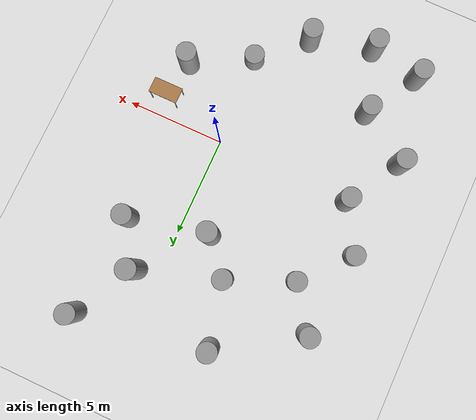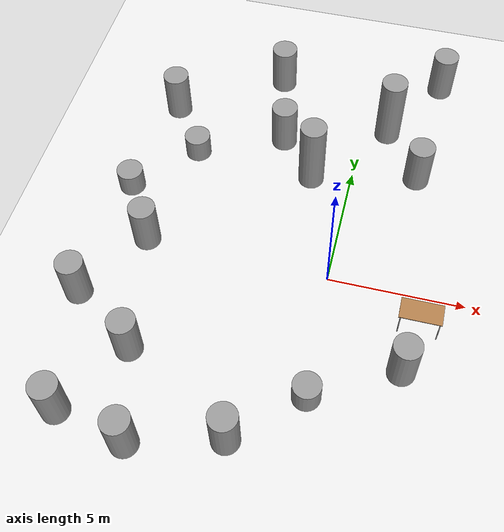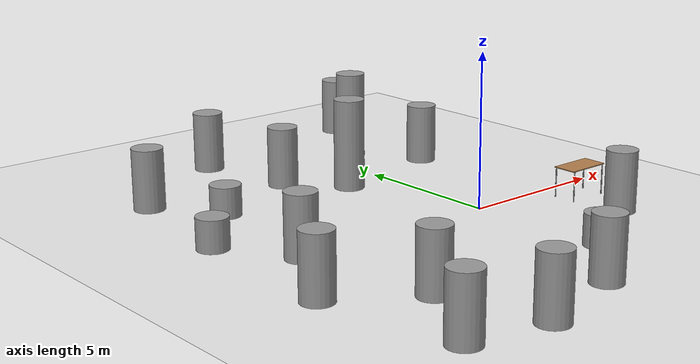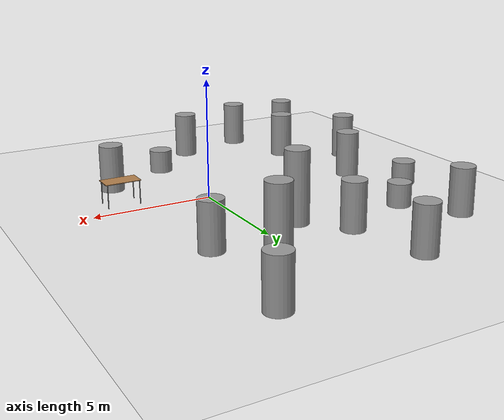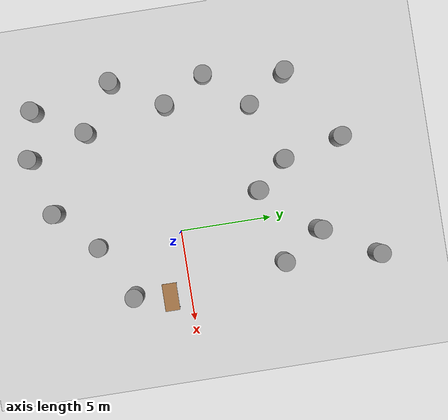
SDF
<sdf version="1.6">
 <world name="default">
  <model name="ground_plane">
   <static>1</static>
   <link name="link">
    <collision name="collision">
     <geometry><plane><normal>0 0 1</normal><size>100 100</size></plane></geometry>
     <surface><friction><ode><mu>100</mu><mu2>50</mu2></ode></friction></surface>
    </collision>
    <visual name="visual">
     <geometry><plane><normal>0 0 1</normal><size>100 100</size></plane></geometry>
     <material>
      <script><uri>file://media/materials/scripts/gazebo.material</uri><name>Gazebo/White</name></script>
     </material>
    </visual>
   </link>
  </model>
  <model name="unit_cylinder_5_clone_4">
   <link name="link">
    <inertial>
     <mass>1</mass>
     <inertia><ixx>0.145833</ixx><ixy>0</ixy><ixz>0</ixz><iyy>0.145833</iyy><iyz>0</iyz><izz>0.125</izz></inertia>
    </inertial>
    <visual name="visual">
     <geometry><cylinder><radius>0.5</radius><length>2</length></cylinder></geometry>
     <material>
      <script><name>Gazebo/Grey</name><uri>file://media/materials/scripts/gazebo.material</uri></script>
      <ambient>0.3 0.3 0.3 1</ambient>
      <diffuse>0.7 0.7 0.7 1</diffuse>
      <specular>0.01 0.01 0.01 1</specular>
      <emissive>0 0 0 1</emissive>
      <shader type="vertex"><normal_map>__default__</normal_map></shader>
     </material>
    </visual>
    <collision name="collision">
     <geometry><cylinder><radius>0.5</radius><length>2</length></cylinder></geometry>
     <surface>
      <friction>
       <ode><mu>1</mu><mu2>1</mu2><fdir1>0 0 0</fdir1><slip1>0</slip1><slip2>0</slip2></ode>
       <torsional>
        <coefficient>1</coefficient>
        <patch_radius>0</patch_radius>
        <surface_radius>0</surface_radius>
        <use_patch_radius>1</use_patch_radius>
        <ode><slip>0</slip></ode>
       </torsional>
      </friction>
      <bounce><restitution_coefficient>0</restitution_coefficient><threshold>1e+06</threshold></bounce>
      <contact>
       <collide_without_contact>0</collide_without_contact>
       <collide_without_contact_bitmask>1</collide_without_contact_bitmask>
       <collide_bitmask>1</collide_bitmask>
       <ode>
        <soft_cfm>0</soft_cfm>
        <soft_erp>0.2</soft_erp>
        <kp>1e+13</kp>
        <kd>1</kd>
        <max_vel>0.01</max_vel>
        <min_depth>0</min_depth>
       </ode>
       <bullet>
        <split_impulse>1</split_impulse>
        <split_impulse_penetration_threshold>-0.01</split_impulse_penetration_threshold>
        <soft_cfm>0</soft_cfm>
        <soft_erp>0.2</soft_erp>
        <kp>1e+13</kp>
        <kd>1</kd>
       </bullet>
      </contact>
     </surface>
    </collision>
   </link>
   <static>0</static>
   <pose>-6.93374 0.169609 0.999884 2.2e-05 -1e-06 -0.003242</pose>
  </model>
  <model name="unit_cylinder_5_clone_5">
   <link name="link">
    <inertial>
     <mass>1</mass>
     <inertia><ixx>0.145833</ixx><ixy>0</ixy><ixz>0</ixz><iyy>0.145833</iyy><iyz>0</iyz><izz>0.125</izz></inertia>
    </inertial>
    <visual name="visual">
     <geometry><cylinder><radius>0.5</radius><length>2</length></cylinder></geometry>
     <material>
      <script><name>Gazebo/Grey</name><uri>file://media/materials/scripts/gazebo.material</uri></script>
      <ambient>0.3 0.3 0.3 1</ambient>
      <diffuse>0.7 0.7 0.7 1</diffuse>
      <specular>0.01 0.01 0.01 1</specular>
      <emissive>0 0 0 1</emissive>
      <shader type="vertex"><normal_map>__default__</normal_map></shader>
     </material>
    </visual>
    <collision name="collision">
     <geometry><cylinder><radius>0.5</radius><length>2</length></cylinder></geometry>
     <surface>
      <friction>
       <ode><mu>1</mu><mu2>1</mu2><fdir1>0 0 0</fdir1><slip1>0</slip1><slip2>0</slip2></ode>
       <torsional>
        <coefficient>1</coefficient>
        <patch_radius>0</patch_radius>
        <surface_radius>0</surface_radius>
        <use_patch_radius>1</use_patch_radius>
        <ode><slip>0</slip></ode>
       </torsional>
      </friction>
      <bounce><restitution_coefficient>0</restitution_coefficient><threshold>1e+06</threshold></bounce>
      <contact>
       <collide_without_contact>0</collide_without_contact>
       <collide_without_contact_bitmask>1</collide_without_contact_bitmask>
       <collide_bitmask>1</collide_bitmask>
       <ode>
        <soft_cfm>0</soft_cfm>
        <soft_erp>0.2</soft_erp>
        <kp>1e+13</kp>
        <kd>1</kd>
        <max_vel>0.01</max_vel>
        <min_depth>0</min_depth>
       </ode>
       <bullet>
        <split_impulse>1</split_impulse>
        <split_impulse_penetration_threshold>-0.01</split_impulse_penetration_threshold>
        <soft_cfm>0</soft_cfm>
        <soft_erp>0.2</soft_erp>
        <kp>1e+13</kp>
        <kd>1</kd>
       </bullet>
      </contact>
     </surface>
    </collision>
   </link>
   <static>0</static>
   <pose>-8.58869 -2.60634 0.999884 2.2e-05 -1e-06 -0.00565</pose>
  </model>
  <model name="unit_cylinder_1">
   <pose>0.21006 -4.63987 0.499883 4e-06 -1e-06 -0.000351</pose>
   <link name="link">
    <inertial>
     <mass>1</mass>
     <inertia><ixx>0.145833</ixx><ixy>0</ixy><ixz>0</ixz><iyy>0.145833</iyy><iyz>0</iyz><izz>0.125</izz></inertia>
    </inertial>
    <collision name="collision">
     <geometry><cylinder><radius>0.5</radius><length>1</length></cylinder></geometry>
    </collision>
    <visual name="visual">
     <geometry><cylinder><radius>0.5</radius><length>1</length></cylinder></geometry>
     <material>
      <script><name>Gazebo/Grey</name><uri>file://media/materials/scripts/gazebo.material</uri></script>
     </material>
    </visual>
   </link>
  </model>
  <model name="unit_cylinder_1_clone_0">
   <pose>-6.29641 4.76433 0.499883 4e-06 -1e-06 -0.000309</pose>
   <link name="link">
    <inertial>
     <mass>1</mass>
     <inertia><ixx>0.145833</ixx><ixy>0</ixy><ixz>0</ixz><iyy>0.145833</iyy><iyz>0</iyz><izz>0.125</izz></inertia>
    </inertial>
    <collision name="collision">
     <geometry><cylinder><radius>0.5</radius><length>1</length></cylinder></geometry>
    </collision>
    <visual name="visual">
     <geometry><cylinder><radius>0.5</radius><length>1</length></cylinder></geometry>
     <material>
      <script><name>Gazebo/Grey</name><uri>file://media/materials/scripts/gazebo.material</uri></script>
     </material>
    </visual>
   </link>
  </model>
  <model name="unit_cylinder_1_clone_1">
   <pose>-8.3358 2.47751 0.499883 4e-06 -1e-06 0.00122</pose>
   <link name="link">
    <inertial>
     <mass>1</mass>
     <inertia><ixx>0.145833</ixx><ixy>0</ixy><ixz>0</ixz><iyy>0.145833</iyy><iyz>0</iyz><izz>0.125</izz></inertia>
    </inertial>
    <collision name="collision">
     <geometry><cylinder><radius>0.5</radius><length>1</length></cylinder></geometry>
    </collision>
    <visual name="visual">
     <geometry><cylinder><radius>0.5</radius><length>1</length></cylinder></geometry>
     <material>
      <script><name>Gazebo/Grey</name><uri>file://media/materials/scripts/gazebo.material</uri></script>
     </material>
    </visual>
   </link>
  </model>
  <model name="unit_cylinder_5_clone_1_clone">
   <link name="link">
    <inertial>
     <mass>1</mass>
     <inertia><ixx>0.145833</ixx><ixy>0</ixy><ixz>0</ixz><iyy>0.145833</iyy><iyz>0</iyz><izz>0.125</izz></inertia>
    </inertial>
    <visual name="visual">
     <geometry><cylinder><radius>0.5</radius><length>2</length></cylinder></geometry>
     <material>
      <script><name>Gazebo/Grey</name><uri>file://media/materials/scripts/gazebo.material</uri></script>
      <ambient>0.3 0.3 0.3 1</ambient>
      <diffuse>0.7 0.7 0.7 1</diffuse>
      <specular>0.01 0.01 0.01 1</specular>
      <emissive>0 0 0 1</emissive>
      <shader type="vertex"><normal_map>__default__</normal_map></shader>
     </material>
    </visual>
    <collision name="collision">
     <geometry><cylinder><radius>0.5</radius><length>2</length></cylinder></geometry>
     <surface>
      <friction>
       <ode><mu>1</mu><mu2>1</mu2><fdir1>0 0 0</fdir1><slip1>0</slip1><slip2>0</slip2></ode>
       <torsional>
        <coefficient>1</coefficient>
        <patch_radius>0</patch_radius>
        <surface_radius>0</surface_radius>
        <use_patch_radius>1</use_patch_radius>
        <ode><slip>0</slip></ode>
       </torsional>
      </friction>
      <bounce><restitution_coefficient>0</restitution_coefficient><threshold>1e+06</threshold></bounce>
      <contact>
       <collide_without_contact>0</collide_without_contact>
       <collide_without_contact_bitmask>1</collide_without_contact_bitmask>
       <collide_bitmask>1</collide_bitmask>
       <ode>
        <soft_cfm>0</soft_cfm>
        <soft_erp>0.2</soft_erp>
        <kp>1e+13</kp>
        <kd>1</kd>
        <max_vel>0.01</max_vel>
        <min_depth>0</min_depth>
       </ode>
       <bullet>
        <split_impulse>1</split_impulse>
        <split_impulse_penetration_threshold>-0.01</split_impulse_penetration_threshold>
        <soft_cfm>0</soft_cfm>
        <soft_erp>0.2</soft_erp>
        <kp>1e+13</kp>
        <kd>1</kd>
       </bullet>
      </contact>
     </surface>
    </collision>
   </link>
   <static>0</static>
   <pose>2.48657 5.34635 0.999884 2.2e-05 -1e-06 -0.002572</pose>
  </model>
  <model name="unit_cylinder_5_clone_1_clone_0">
   <link name="link">
    <inertial>
     <mass>1</mass>
     <inertia><ixx>0.145833</ixx><ixy>0</ixy><ixz>0</ixz><iyy>0.145833</iyy><iyz>0</iyz><izz>0.125</izz></inertia>
    </inertial>
    <visual name="visual">
     <geometry><cylinder><radius>0.5</radius><length>2</length></cylinder></geometry>
     <material>
      <script><name>Gazebo/Grey</name><uri>file://media/materials/scripts/gazebo.material</uri></script>
      <ambient>0.3 0.3 0.3 1</ambient>
      <diffuse>0.7 0.7 0.7 1</diffuse>
      <specular>0.01 0.01 0.01 1</specular>
      <emissive>0 0 0 1</emissive>
      <shader type="vertex"><normal_map>__default__</normal_map></shader>
     </material>
    </visual>
    <collision name="collision">
     <geometry><cylinder><radius>0.5</radius><length>2</length></cylinder></geometry>
     <surface>
      <friction>
       <ode><mu>1</mu><mu2>1</mu2><fdir1>0 0 0</fdir1><slip1>0</slip1><slip2>0</slip2></ode>
       <torsional>
        <coefficient>1</coefficient>
        <patch_radius>0</patch_radius>
        <surface_radius>0</surface_radius>
        <use_patch_radius>1</use_patch_radius>
        <ode><slip>0</slip></ode>
       </torsional>
      </friction>
      <bounce><restitution_coefficient>0</restitution_coefficient><threshold>1e+06</threshold></bounce>
      <contact>
       <collide_without_contact>0</collide_without_contact>
       <collide_without_contact_bitmask>1</collide_without_contact_bitmask>
       <collide_bitmask>1</collide_bitmask>
       <ode>
        <soft_cfm>0</soft_cfm>
        <soft_erp>0.2</soft_erp>
        <kp>1e+13</kp>
        <kd>1</kd>
        <max_vel>0.01</max_vel>
        <min_depth>0</min_depth>
       </ode>
       <bullet>
        <split_impulse>1</split_impulse>
        <split_impulse_penetration_threshold>-0.01</split_impulse_penetration_threshold>
        <soft_cfm>0</soft_cfm>
        <soft_erp>0.2</soft_erp>
        <kp>1e+13</kp>
        <kd>1</kd>
       </bullet>
      </contact>
     </surface>
    </collision>
   </link>
   <static>0</static>
   <pose>-3.04049 6.13013 0.999884 2.2e-05 -1e-06 -0.001543</pose>
  </model>
  <model name="unit_cylinder_0_0_clone_clone">
   <link name="link">
    <inertial>
     <mass>1</mass>
     <inertia><ixx>0.145833</ixx><ixy>0</ixy><ixz>0</ixz><iyy>0.145833</iyy><iyz>0</iyz><izz>0.125</izz></inertia>
    </inertial>
    <visual name="visual">
     <geometry><cylinder><radius>0.5</radius><length>3</length></cylinder></geometry>
     <material>
      <script><name>Gazebo/Grey</name><uri>file://media/materials/scripts/gazebo.material</uri></script>
      <ambient>0.3 0.3 0.3 1</ambient>
      <diffuse>0.7 0.7 0.7 1</diffuse>
      <specular>0.01 0.01 0.01 1</specular>
      <emissive>0 0 0 1</emissive>
      <shader type="vertex"><normal_map>__default__</normal_map></shader>
     </material>
    </visual>
    <collision name="collision">
     <geometry><cylinder><radius>0.5</radius><length>3</length></cylinder></geometry>
     <surface>
      <friction>
       <ode><mu>1</mu><mu2>1</mu2><fdir1>0 0 0</fdir1><slip1>0</slip1><slip2>0</slip2></ode>
       <torsional>
        <coefficient>1</coefficient>
        <patch_radius>0</patch_radius>
        <surface_radius>0</surface_radius>
        <use_patch_radius>1</use_patch_radius>
        <ode><slip>0</slip></ode>
       </torsional>
      </friction>
      <bounce><restitution_coefficient>0</restitution_coefficient><threshold>1e+06</threshold></bounce>
      <contact>
       <collide_without_contact>0</collide_without_contact>
       <collide_without_contact_bitmask>1</collide_without_contact_bitmask>
       <collide_bitmask>1</collide_bitmask>
       <ode>
        <soft_cfm>0</soft_cfm>
        <soft_erp>0.2</soft_erp>
        <kp>1e+13</kp>
        <kd>1</kd>
        <max_vel>0.01</max_vel>
        <min_depth>0</min_depth>
       </ode>
       <bullet>
        <split_impulse>1</split_impulse>
        <split_impulse_penetration_threshold>-0.01</split_impulse_penetration_threshold>
        <soft_cfm>0</soft_cfm>
        <soft_erp>0.2</soft_erp>
        <kp>1e+13</kp>
        <kd>1</kd>
       </bullet>
      </contact>
     </surface>
    </collision>
   </link>
   <static>0</static>
   <pose>1.00258 7.45887 1.49988 4.7e-05 -3e-06 -0.011031</pose>
  </model>
  <model name="unit_cylinder_0_0_clone_clone_1">
   <link name="link">
    <inertial>
     <mass>1</mass>
     <inertia><ixx>0.145833</ixx><ixy>0</ixy><ixz>0</ixz><iyy>0.145833</iyy><iyz>0</iyz><izz>0.125</izz></inertia>
    </inertial>
    <visual name="visual">
     <geometry><cylinder><radius>0.5</radius><length>3</length></cylinder></geometry>
     <material>
      <script><name>Gazebo/Grey</name><uri>file://media/materials/scripts/gazebo.material</uri></script>
      <ambient>0.3 0.3 0.3 1</ambient>
      <diffuse>0.7 0.7 0.7 1</diffuse>
      <specular>0.01 0.01 0.01 1</specular>
      <emissive>0 0 0 1</emissive>
      <shader type="vertex"><normal_map>__default__</normal_map></shader>
     </material>
    </visual>
    <collision name="collision">
     <geometry><cylinder><radius>0.5</radius><length>3</length></cylinder></geometry>
     <surface>
      <friction>
       <ode><mu>1</mu><mu2>1</mu2><fdir1>0 0 0</fdir1><slip1>0</slip1><slip2>0</slip2></ode>
       <torsional>
        <coefficient>1</coefficient>
        <patch_radius>0</patch_radius>
        <surface_radius>0</surface_radius>
        <use_patch_radius>1</use_patch_radius>
        <ode><slip>0</slip></ode>
       </torsional>
      </friction>
      <bounce><restitution_coefficient>0</restitution_coefficient><threshold>1e+06</threshold></bounce>
      <contact>
       <collide_without_contact>0</collide_without_contact>
       <collide_without_contact_bitmask>1</collide_without_contact_bitmask>
       <collide_bitmask>1</collide_bitmask>
       <ode>
        <soft_cfm>0</soft_cfm>
        <soft_erp>0.2</soft_erp>
        <kp>1e+13</kp>
        <kd>1</kd>
        <max_vel>0.01</max_vel>
        <min_depth>0</min_depth>
       </ode>
       <bullet>
        <split_impulse>1</split_impulse>
        <split_impulse_penetration_threshold>-0.01</split_impulse_penetration_threshold>
        <soft_cfm>0</soft_cfm>
        <soft_erp>0.2</soft_erp>
        <kp>1e+13</kp>
        <kd>1</kd>
       </bullet>
      </contact>
     </surface>
    </collision>
   </link>
   <static>0</static>
   <pose>-1.56827 4.46661 1.49988 4.7e-05 4e-06 0.007604</pose>
  </model>
  <model name="unit_cylinder_5_clone_0_clone">
   <link name="link">
    <inertial>
     <mass>1</mass>
     <inertia><ixx>0.145833</ixx><ixy>0</ixy><ixz>0</ixz><iyy>0.145833</iyy><iyz>0</iyz><izz>0.125</izz></inertia>
    </inertial>
    <visual name="visual">
     <geometry><cylinder><radius>0.5</radius><length>2</length></cylinder></geometry>
     <material>
      <script><name>Gazebo/Grey</name><uri>file://media/materials/scripts/gazebo.material</uri></script>
      <ambient>0.3 0.3 0.3 1</ambient>
      <diffuse>0.7 0.7 0.7 1</diffuse>
      <specular>0.01 0.01 0.01 1</specular>
      <emissive>0 0 0 1</emissive>
      <shader type="vertex"><normal_map>__default__</normal_map></shader>
     </material>
    </visual>
    <collision name="collision">
     <geometry><cylinder><radius>0.5</radius><length>2</length></cylinder></geometry>
     <surface>
      <friction>
       <ode><mu>1</mu><mu2>1</mu2><fdir1>0 0 0</fdir1><slip1>0</slip1><slip2>0</slip2></ode>
       <torsional>
        <coefficient>1</coefficient>
        <patch_radius>0</patch_radius>
        <surface_radius>0</surface_radius>
        <use_patch_radius>1</use_patch_radius>
        <ode><slip>0</slip></ode>
       </torsional>
      </friction>
      <bounce><restitution_coefficient>0</restitution_coefficient><threshold>1e+06</threshold></bounce>
      <contact>
       <collide_without_contact>0</collide_without_contact>
       <collide_without_contact_bitmask>1</collide_without_contact_bitmask>
       <collide_bitmask>1</collide_bitmask>
       <ode>
        <soft_cfm>0</soft_cfm>
        <soft_erp>0.2</soft_erp>
        <kp>1e+13</kp>
        <kd>1</kd>
        <max_vel>0.01</max_vel>
        <min_depth>0</min_depth>
       </ode>
       <bullet>
        <split_impulse>1</split_impulse>
        <split_impulse_penetration_threshold>-0.01</split_impulse_penetration_threshold>
        <soft_cfm>0</soft_cfm>
        <soft_erp>0.2</soft_erp>
        <kp>1e+13</kp>
        <kd>1</kd>
       </bullet>
      </contact>
     </surface>
    </collision>
   </link>
   <static>0</static>
   <pose>3.1338 -3.03553 0.999884 2.2e-05 -2e-06 0.003362</pose>
  </model>
  <model name="unit_cylinder_5_clone_0_clone_1">
   <link name="link">
    <inertial>
     <mass>1</mass>
     <inertia><ixx>0.145833</ixx><ixy>0</ixy><ixz>0</ixz><iyy>0.145833</iyy><iyz>0</iyz><izz>0.125</izz></inertia>
    </inertial>
    <visual name="visual">
     <geometry><cylinder><radius>0.5</radius><length>2</length></cylinder></geometry>
     <material>
      <script><name>Gazebo/Grey</name><uri>file://media/materials/scripts/gazebo.material</uri></script>
      <ambient>0.3 0.3 0.3 1</ambient>
      <diffuse>0.7 0.7 0.7 1</diffuse>
      <specular>0.01 0.01 0.01 1</specular>
      <emissive>0 0 0 1</emissive>
      <shader type="vertex"><normal_map>__default__</normal_map></shader>
     </material>
    </visual>
    <collision name="collision">
     <geometry><cylinder><radius>0.5</radius><length>2</length></cylinder></geometry>
     <surface>
      <friction>
       <ode><mu>1</mu><mu2>1</mu2><fdir1>0 0 0</fdir1><slip1>0</slip1><slip2>0</slip2></ode>
       <torsional>
        <coefficient>1</coefficient>
        <patch_radius>0</patch_radius>
        <surface_radius>0</surface_radius>
        <use_patch_radius>1</use_patch_radius>
        <ode><slip>0</slip></ode>
       </torsional>
      </friction>
      <bounce><restitution_coefficient>0</restitution_coefficient><threshold>1e+06</threshold></bounce>
      <contact>
       <collide_without_contact>0</collide_without_contact>
       <collide_without_contact_bitmask>1</collide_without_contact_bitmask>
       <collide_bitmask>1</collide_bitmask>
       <ode>
        <soft_cfm>0</soft_cfm>
        <soft_erp>0.2</soft_erp>
        <kp>1e+13</kp>
        <kd>1</kd>
        <max_vel>0.01</max_vel>
        <min_depth>0</min_depth>
       </ode>
       <bullet>
        <split_impulse>1</split_impulse>
        <split_impulse_penetration_threshold>-0.01</split_impulse_penetration_threshold>
        <soft_cfm>0</soft_cfm>
        <soft_erp>0.2</soft_erp>
        <kp>1e+13</kp>
        <kd>1</kd>
       </bullet>
      </contact>
     </surface>
    </collision>
   </link>
   <static>0</static>
   <pose>-1.98793 -6.68678 0.999884 2.2e-05 -1e-06 0.001991</pose>
  </model>
  <model name="unit_cylinder_5_clone_0_clone_6">
   <link name="link">
    <inertial>
     <mass>1</mass>
     <inertia><ixx>0.145833</ixx><ixy>0</ixy><ixz>0</ixz><iyy>0.145833</iyy><iyz>0</iyz><izz>0.125</izz></inertia>
    </inertial>
    <visual name="visual">
     <geometry><cylinder><radius>0.5</radius><length>2</length></cylinder></geometry>
     <material>
      <script><name>Gazebo/Grey</name><uri>file://media/materials/scripts/gazebo.material</uri></script>
      <ambient>0.3 0.3 0.3 1</ambient>
      <diffuse>0.7 0.7 0.7 1</diffuse>
      <specular>0.01 0.01 0.01 1</specular>
      <emissive>0 0 0 1</emissive>
      <shader type="vertex"><normal_map>__default__</normal_map></shader>
     </material>
    </visual>
    <collision name="collision">
     <geometry><cylinder><radius>0.5</radius><length>2</length></cylinder></geometry>
     <surface>
      <friction>
       <ode><mu>1</mu><mu2>1</mu2><fdir1>0 0 0</fdir1><slip1>0</slip1><slip2>0</slip2></ode>
       <torsional>
        <coefficient>1</coefficient>
        <patch_radius>0</patch_radius>
        <surface_radius>0</surface_radius>
        <use_patch_radius>1</use_patch_radius>
        <ode><slip>0</slip></ode>
       </torsional>
      </friction>
      <bounce><restitution_coefficient>0</restitution_coefficient><threshold>1e+06</threshold></bounce>
      <contact>
       <collide_without_contact>0</collide_without_contact>
       <collide_without_contact_bitmask>1</collide_without_contact_bitmask>
       <collide_bitmask>1</collide_bitmask>
       <ode>
        <soft_cfm>0</soft_cfm>
        <soft_erp>0.2</soft_erp>
        <kp>1e+13</kp>
        <kd>1</kd>
        <max_vel>0.01</max_vel>
        <min_depth>0</min_depth>
       </ode>
       <bullet>
        <split_impulse>1</split_impulse>
        <split_impulse_penetration_threshold>-0.01</split_impulse_penetration_threshold>
        <soft_cfm>0</soft_cfm>
        <soft_erp>0.2</soft_erp>
        <kp>1e+13</kp>
        <kd>1</kd>
       </bullet>
      </contact>
     </surface>
    </collision>
   </link>
   <static>0</static>
   <pose>-7.74649 6.83596 0.999884 2.2e-05 -1e-06 0.001268</pose>
  </model>
  <model name="unit_cylinder_5_clone_0_clone_7">
   <link name="link">
    <inertial>
     <mass>1</mass>
     <inertia><ixx>0.145833</ixx><ixy>0</ixy><ixz>0</ixz><iyy>0.145833</iyy><iyz>0</iyz><izz>0.125</izz></inertia>
    </inertial>
    <visual name="visual">
     <geometry><cylinder><radius>0.5</radius><length>2</length></cylinder></geometry>
     <material>
      <script><name>Gazebo/Grey</name><uri>file://media/materials/scripts/gazebo.material</uri></script>
      <ambient>0.3 0.3 0.3 1</ambient>
      <diffuse>0.7 0.7 0.7 1</diffuse>
      <specular>0.01 0.01 0.01 1</specular>
      <emissive>0 0 0 1</emissive>
      <shader type="vertex"><normal_map>__default__</normal_map></shader>
     </material>
    </visual>
    <collision name="collision">
     <geometry><cylinder><radius>0.5</radius><length>2</length></cylinder></geometry>
     <surface>
      <friction>
       <ode><mu>1</mu><mu2>1</mu2><fdir1>0 0 0</fdir1><slip1>0</slip1><slip2>0</slip2></ode>
       <torsional>
        <coefficient>1</coefficient>
        <patch_radius>0</patch_radius>
        <surface_radius>0</surface_radius>
        <use_patch_radius>1</use_patch_radius>
        <ode><slip>0</slip></ode>
       </torsional>
      </friction>
      <bounce><restitution_coefficient>0</restitution_coefficient><threshold>1e+06</threshold></bounce>
      <contact>
       <collide_without_contact>0</collide_without_contact>
       <collide_without_contact_bitmask>1</collide_without_contact_bitmask>
       <collide_bitmask>1</collide_bitmask>
       <ode>
        <soft_cfm>0</soft_cfm>
        <soft_erp>0.2</soft_erp>
        <kp>1e+13</kp>
        <kd>1</kd>
        <max_vel>0.01</max_vel>
        <min_depth>0</min_depth>
       </ode>
       <bullet>
        <split_impulse>1</split_impulse>
        <split_impulse_penetration_threshold>-0.01</split_impulse_penetration_threshold>
        <soft_cfm>0</soft_cfm>
        <soft_erp>0.2</soft_erp>
        <kp>1e+13</kp>
        <kd>1</kd>
       </bullet>
      </contact>
     </surface>
    </collision>
   </link>
   <static>0</static>
   <pose>-6.09067 -4.32217 0.999884 2.2e-05 -1e-06 0.000743</pose>
  </model>
  <model name="unit_cylinder_5_clone_0_clone_8">
   <link name="link">
    <inertial>
     <mass>1</mass>
     <inertia><ixx>0.145833</ixx><ixy>0</ixy><ixz>0</ixz><iyy>0.145833</iyy><iyz>0</iyz><izz>0.125</izz></inertia>
    </inertial>
    <visual name="visual">
     <geometry><cylinder><radius>0.5</radius><length>2</length></cylinder></geometry>
     <material>
      <script><name>Gazebo/Grey</name><uri>file://media/materials/scripts/gazebo.material</uri></script>
      <ambient>0.3 0.3 0.3 1</ambient>
      <diffuse>0.7 0.7 0.7 1</diffuse>
      <specular>0.01 0.01 0.01 1</specular>
      <emissive>0 0 0 1</emissive>
      <shader type="vertex"><normal_map>__default__</normal_map></shader>
     </material>
    </visual>
    <collision name="collision">
     <geometry><cylinder><radius>0.5</radius><length>2</length></cylinder></geometry>
     <surface>
      <friction>
       <ode><mu>1</mu><mu2>1</mu2><fdir1>0 0 0</fdir1><slip1>0</slip1><slip2>0</slip2></ode>
       <torsional>
        <coefficient>1</coefficient>
        <patch_radius>0</patch_radius>
        <surface_radius>0</surface_radius>
        <use_patch_radius>1</use_patch_radius>
        <ode><slip>0</slip></ode>
       </torsional>
      </friction>
      <bounce><restitution_coefficient>0</restitution_coefficient><threshold>1e+06</threshold></bounce>
      <contact>
       <collide_without_contact>0</collide_without_contact>
       <collide_without_contact_bitmask>1</collide_without_contact_bitmask>
       <collide_bitmask>1</collide_bitmask>
       <ode>
        <soft_cfm>0</soft_cfm>
        <soft_erp>0.2</soft_erp>
        <kp>1e+13</kp>
        <kd>1</kd>
        <max_vel>0.01</max_vel>
        <min_depth>0</min_depth>
       </ode>
       <bullet>
        <split_impulse>1</split_impulse>
        <split_impulse_penetration_threshold>-0.01</split_impulse_penetration_threshold>
        <soft_cfm>0</soft_cfm>
        <soft_erp>0.2</soft_erp>
        <kp>1e+13</kp>
        <kd>1</kd>
       </bullet>
      </contact>
     </surface>
    </collision>
   </link>
   <static>0</static>
   <pose>-7.67513 -7.00944 0.999884 2.2e-05 -1e-06 5e-05</pose>
  </model>
  <model name="unit_cylinder_5_clone_0_clone_9">
   <link name="link">
    <inertial>
     <mass>1</mass>
     <inertia><ixx>0.145833</ixx><ixy>0</ixy><ixz>0</ixz><iyy>0.145833</iyy><iyz>0</iyz><izz>0.125</izz></inertia>
    </inertial>
    <visual name="visual">
     <geometry><cylinder><radius>0.5</radius><length>2</length></cylinder></geometry>
     <material>
      <script><name>Gazebo/Grey</name><uri>file://media/materials/scripts/gazebo.material</uri></script>
      <ambient>0.3 0.3 0.3 1</ambient>
      <diffuse>0.7 0.7 0.7 1</diffuse>
      <specular>0.01 0.01 0.01 1</specular>
      <emissive>0 0 0 1</emissive>
      <shader type="vertex"><normal_map>__default__</normal_map></shader>
     </material>
    </visual>
    <collision name="collision">
     <geometry><cylinder><radius>0.5</radius><length>2</length></cylinder></geometry>
     <surface>
      <friction>
       <ode><mu>1</mu><mu2>1</mu2><fdir1>0 0 0</fdir1><slip1>0</slip1><slip2>0</slip2></ode>
       <torsional>
        <coefficient>1</coefficient>
        <patch_radius>0</patch_radius>
        <surface_radius>0</surface_radius>
        <use_patch_radius>1</use_patch_radius>
        <ode><slip>0</slip></ode>
       </torsional>
      </friction>
      <bounce><restitution_coefficient>0</restitution_coefficient><threshold>1e+06</threshold></bounce>
      <contact>
       <collide_without_contact>0</collide_without_contact>
       <collide_without_contact_bitmask>1</collide_without_contact_bitmask>
       <collide_bitmask>1</collide_bitmask>
       <ode>
        <soft_cfm>0</soft_cfm>
        <soft_erp>0.2</soft_erp>
        <kp>1e+13</kp>
        <kd>1</kd>
        <max_vel>0.01</max_vel>
        <min_depth>0</min_depth>
       </ode>
       <bullet>
        <split_impulse>1</split_impulse>
        <split_impulse_penetration_threshold>-0.01</split_impulse_penetration_threshold>
        <soft_cfm>0</soft_cfm>
        <soft_erp>0.2</soft_erp>
        <kp>1e+13</kp>
        <kd>1</kd>
       </bullet>
      </contact>
     </surface>
    </collision>
   </link>
   <static>0</static>
   <pose>-5.11629 -7.54679 0.999884 2.2e-05 -1e-06 0.000502</pose>
  </model>
  <model name="unit_cylinder_5_clone_0_clone_4_clone">
   <link name="link">
    <inertial>
     <mass>1</mass>
     <inertia><ixx>0.145833</ixx><ixy>0</ixy><ixz>0</ixz><iyy>0.145833</iyy><iyz>0</iyz><izz>0.125</izz></inertia>
    </inertial>
    <visual name="visual">
     <geometry><cylinder><radius>0.5</radius><length>2</length></cylinder></geometry>
     <material>
      <script><name>Gazebo/Grey</name><uri>file://media/materials/scripts/gazebo.material</uri></script>
      <ambient>0.3 0.3 0.3 1</ambient>
      <diffuse>0.7 0.7 0.7 1</diffuse>
      <specular>0.01 0.01 0.01 1</specular>
      <emissive>0 0 0 1</emissive>
      <shader type="vertex"><normal_map>__default__</normal_map></shader>
     </material>
    </visual>
    <collision name="collision">
     <geometry><cylinder><radius>0.5</radius><length>2</length></cylinder></geometry>
     <surface>
      <friction>
       <ode><mu>1</mu><mu2>1</mu2><fdir1>0 0 0</fdir1><slip1>0</slip1><slip2>0</slip2></ode>
       <torsional>
        <coefficient>1</coefficient>
        <patch_radius>0</patch_radius>
        <surface_radius>0</surface_radius>
        <use_patch_radius>1</use_patch_radius>
        <ode><slip>0</slip></ode>
       </torsional>
      </friction>
      <bounce><restitution_coefficient>0</restitution_coefficient><threshold>1e+06</threshold></bounce>
      <contact>
       <collide_without_contact>0</collide_without_contact>
       <collide_without_contact_bitmask>1</collide_without_contact_bitmask>
       <collide_bitmask>1</collide_bitmask>
       <ode>
        <soft_cfm>0</soft_cfm>
        <soft_erp>0.2</soft_erp>
        <kp>1e+13</kp>
        <kd>1</kd>
        <max_vel>0.01</max_vel>
        <min_depth>0</min_depth>
       </ode>
       <bullet>
        <split_impulse>1</split_impulse>
        <split_impulse_penetration_threshold>-0.01</split_impulse_penetration_threshold>
        <soft_cfm>0</soft_cfm>
        <soft_erp>0.2</soft_erp>
        <kp>1e+13</kp>
        <kd>1</kd>
       </bullet>
      </contact>
     </surface>
    </collision>
   </link>
   <static>0</static>
   <pose>2.81053 10.5041 0.999884 2.2e-05 -1e-06 0.001265</pose>
  </model>
  <model name="table">
   <static>1</static>
   <link name="link">
    <collision name="surface">
     <pose>0 0 1 0 -0 0</pose>
     <geometry><box><size>1.5 0.8 0.03</size></box></geometry>
     <surface><friction><ode><mu>0.6</mu><mu2>0.6</mu2></ode></friction></surface>
    </collision>
    <visual name="visual1">
     <pose>0 0 1 0 -0 0</pose>
     <geometry><box><size>1.5 0.8 0.03</size></box></geometry>
     <material>
      <script><uri>file://media/materials/scripts/gazebo.material</uri><name>Gazebo/Wood</name></script>
     </material>
    </visual>
    <collision name="front_left_leg">
     <pose>0.68 0.38 0.5 0 -0 0</pose>
     <geometry><cylinder><radius>0.02</radius><length>1</length></cylinder></geometry>
    </collision>
    <visual name="front_left_leg">
     <pose>0.68 0.38 0.5 0 -0 0</pose>
     <geometry><cylinder><radius>0.02</radius><length>1</length></cylinder></geometry>
     <material>
      <script><uri>file://media/materials/scripts/gazebo.material</uri><name>Gazebo/Grey</name></script>
     </material>
    </visual>
    <collision name="front_right_leg">
     <pose>0.68 -0.38 0.5 0 -0 0</pose>
     <geometry><cylinder><radius>0.02</radius><length>1</length></cylinder></geometry>
    </collision>
    <visual name="front_right_leg">
     <pose>0.68 -0.38 0.5 0 -0 0</pose>
     <geometry><cylinder><radius>0.02</radius><length>1</length></cylinder></geometry>
     <material>
      <script><uri>file://media/materials/scripts/gazebo.material</uri><name>Gazebo/Grey</name></script>
     </material>
    </visual>
    <collision name="back_right_leg">
     <pose>-0.68 -0.38 0.5 0 -0 0</pose>
     <geometry><cylinder><radius>0.02</radius><length>1</length></cylinder></geometry>
    </collision>
    <visual name="back_right_leg">
     <pose>-0.68 -0.38 0.5 0 -0 0</pose>
     <geometry><cylinder><radius>0.02</radius><length>1</length></cylinder></geometry>
     <material>
      <script><uri>file://media/materials/scripts/gazebo.material</uri><name>Gazebo/Grey</name></script>
     </material>
    </visual>
    <collision name="back_left_leg">
     <pose>-0.68 0.38 0.5 0 -0 0</pose>
     <geometry><cylinder><radius>0.02</radius><length>1</length></cylinder></geometry>
    </collision>
    <visual name="back_left_leg">
     <pose>-0.68 0.38 0.5 0 -0 0</pose>
     <geometry><cylinder><radius>0.02</radius><length>1</length></cylinder></geometry>
     <material>
      <script><uri>file://media/materials/scripts/gazebo.material</uri><name>Gazebo/Grey</name></script>
     </material>
    </visual>
   </link>
   <pose>3.45237 -1.1043 0 0 -0 0</pose>
  </model>
  <model name="unit_cylinder_5_clone_1_clone_0_clone">
   <link name="link">
    <inertial>
     <mass>1</mass>
     <inertia><ixx>0.145833</ixx><ixy>0</ixy><ixz>0</ixz><iyy>0.145833</iyy><iyz>0</iyz><izz>0.125</izz></inertia>
    </inertial>
    <visual name="visual">
     <geometry><cylinder><radius>0.5</radius><length>2</length></cylinder></geometry>
     <material>
      <script><name>Gazebo/Grey</name><uri>file://media/materials/scripts/gazebo.material</uri></script>
      <ambient>0.3 0.3 0.3 1</ambient>
      <diffuse>0.7 0.7 0.7 1</diffuse>
      <specular>0.01 0.01 0.01 1</specular>
      <emissive>0 0 0 1</emissive>
      <shader type="vertex"><normal_map>__default__</normal_map></shader>
     </material>
    </visual>
    <collision name="collision">
     <geometry><cylinder><radius>0.5</radius><length>2</length></cylinder></geometry>
     <surface>
      <friction>
       <ode><mu>1</mu><mu2>1</mu2><fdir1>0 0 0</fdir1><slip1>0</slip1><slip2>0</slip2></ode>
       <torsional>
        <coefficient>1</coefficient>
        <patch_radius>0</patch_radius>
        <surface_radius>0</surface_radius>
        <use_patch_radius>1</use_patch_radius>
        <ode><slip>0</slip></ode>
       </torsional>
      </friction>
      <bounce><restitution_coefficient>0</restitution_coefficient><threshold>1e+06</threshold></bounce>
      <contact>
       <collide_without_contact>0</collide_without_contact>
       <collide_without_contact_bitmask>1</collide_without_contact_bitmask>
       <collide_bitmask>1</collide_bitmask>
       <ode>
        <soft_cfm>0</soft_cfm>
        <soft_erp>0.2</soft_erp>
        <kp>1e+13</kp>
        <kd>1</kd>
        <max_vel>0.01</max_vel>
        <min_depth>0</min_depth>
       </ode>
       <bullet>
        <split_impulse>1</split_impulse>
        <split_impulse_penetration_threshold>-0.01</split_impulse_penetration_threshold>
        <soft_cfm>0</soft_cfm>
        <soft_erp>0.2</soft_erp>
        <kp>1e+13</kp>
        <kd>1</kd>
       </bullet>
      </contact>
     </surface>
    </collision>
   </link>
   <static>0</static>
   <pose>-3.78876 9.36628 0.999884 2.2e-05 -1e-06 -0.001516</pose>
  </model>
 </world>
</sdf>
